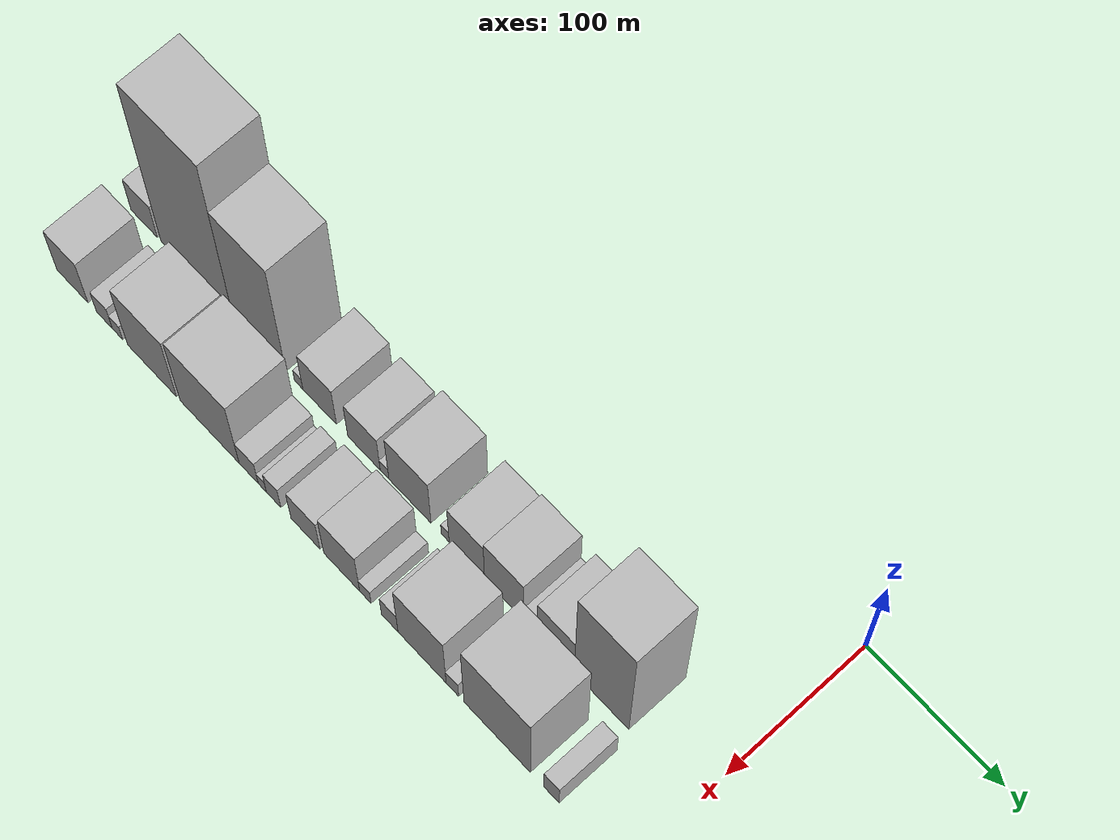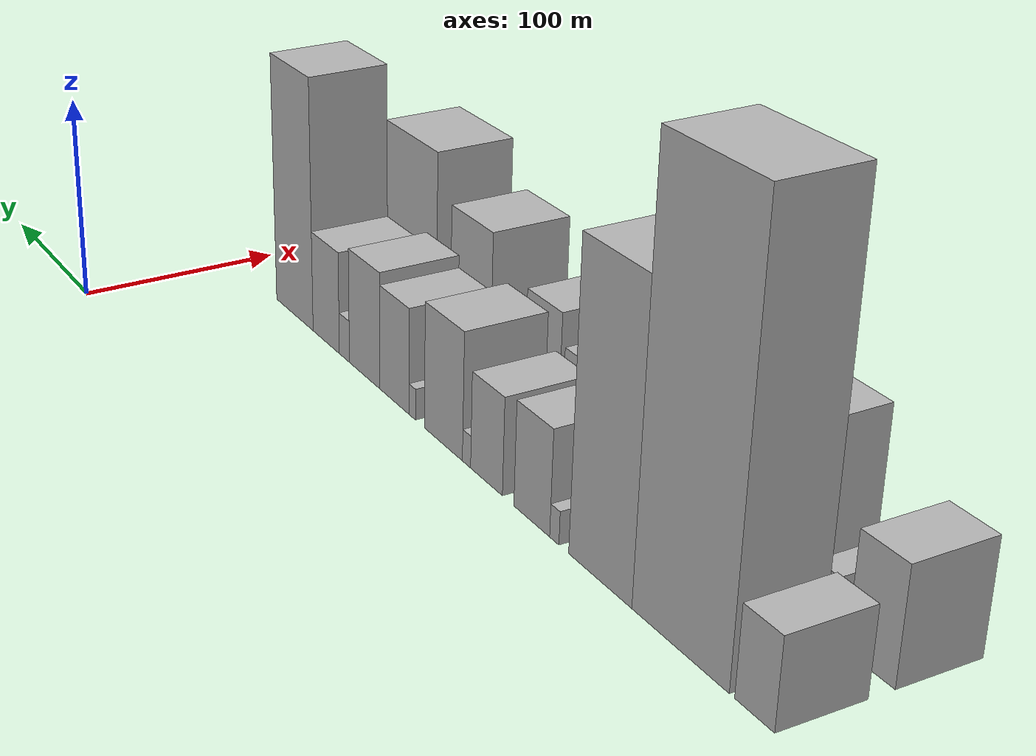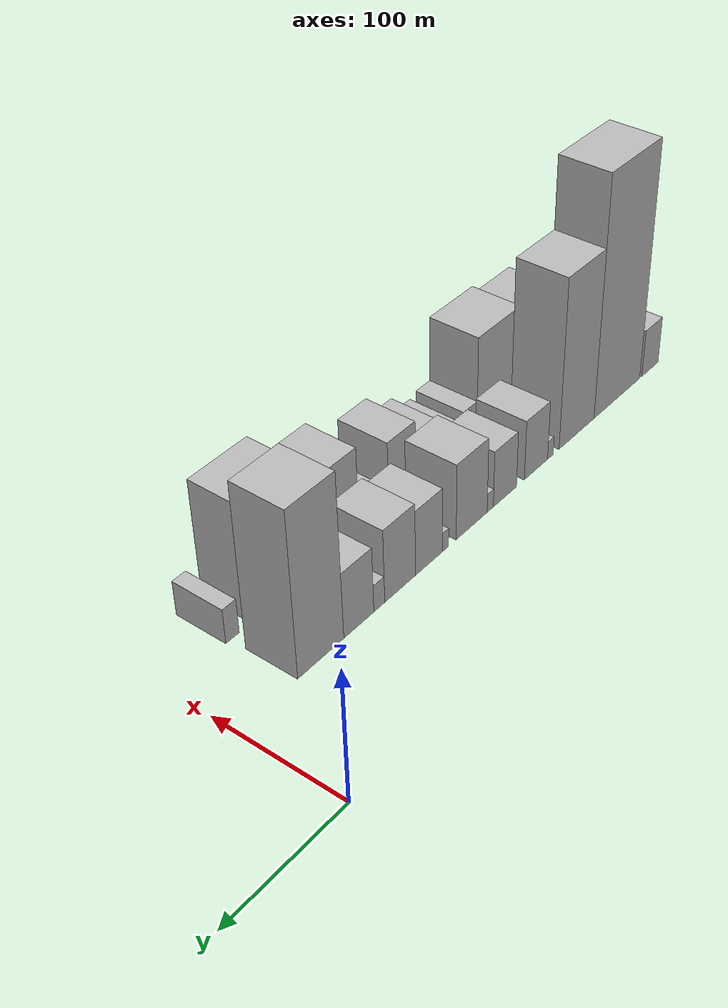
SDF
<sdf version="1.6">
 <world name="default">
  <model name="building_1">
   <static>1</static>
   <pose>100.0000 -432.9461 0 0.000000 0.000000 0.000000</pose>
   <link name="link">
    <pose>0 0 19.50 0 0 0</pose>
    <collision name="collision"><geometry><box><size>40.0000 22.1078 39.0000</size></box></geometry></collision>
    <visual name="visual">
     <cast_shadows>0</cast_shadows>
     <geometry><box><size>40.0000 22.1078 39.0000</size></box></geometry>
     <material>
      <script>
       <uri>model://HANNAS_wall/materials/scripts</uri>
       <uri>model://HANNAS_wall/materials/textures</uri>
       <name>vrc/HANNAS_wall</name>
      </script>
     </material>
    </visual>
   </link>
  </model>
  <model name="building_2">
   <static>1</static>
   <pose>100.0000 -389.1736 0 0.000000 0.000000 0.000000</pose>
   <link name="link">
    <pose>0 0 94.50 0 0 0</pose>
    <collision name="collision"><geometry><box><size>40.0000 59.4371 189.0000</size></box></geometry></collision>
    <visual name="visual">
     <cast_shadows>0</cast_shadows>
     <geometry><box><size>40.0000 59.4371 189.0000</size></box></geometry>
     <material>
      <script>
       <uri>model://HANNAS_wall/materials/scripts</uri>
       <uri>model://HANNAS_wall/materials/textures</uri>
       <name>vrc/HANNAS_wall</name>
      </script>
     </material>
    </visual>
   </link>
  </model>
  <model name="building_3">
   <static>1</static>
   <pose>100.0000 -337.9111 0 0.000000 0.000000 0.000000</pose>
   <link name="link">
    <pose>0 0 67.50 0 0 0</pose>
    <collision name="collision"><geometry><box><size>40.0000 43.0879 135.0000</size></box></geometry></collision>
    <visual name="visual">
     <cast_shadows>0</cast_shadows>
     <geometry><box><size>40.0000 43.0879 135.0000</size></box></geometry>
     <material>
      <script>
       <uri>model://HANNAS_wall/materials/scripts</uri>
       <uri>model://HANNAS_wall/materials/textures</uri>
       <name>vrc/HANNAS_wall</name>
      </script>
     </material>
    </visual>
   </link>
  </model>
  <model name="building_4">
   <static>1</static>
   <pose>100.0000 -305.9987 0 0.000000 0.000000 0.000000</pose>
   <link name="link">
    <pose>0 0 7.50 0 0 0</pose>
    <collision name="collision"><geometry><box><size>40.0000 6.7368 15.0000</size></box></geometry></collision>
    <visual name="visual">
     <cast_shadows>0</cast_shadows>
     <geometry><box><size>40.0000 6.7368 15.0000</size></box></geometry>
     <material>
      <script>
       <uri>model://HANNAS_wall/materials/scripts</uri>
       <uri>model://HANNAS_wall/materials/textures</uri>
       <name>vrc/HANNAS_wall</name>
      </script>
     </material>
    </visual>
   </link>
  </model>
  <model name="building_5">
   <static>1</static>
   <pose>100.0000 -289.1249 0 0.000000 0.000000 0.000000</pose>
   <link name="link">
    <pose>0 0 24.00 0 0 0</pose>
    <collision name="collision"><geometry><box><size>40.0000 27.0108 48.0000</size></box></geometry></collision>
    <visual name="visual">
     <cast_shadows>0</cast_shadows>
     <geometry><box><size>40.0000 27.0108 48.0000</size></box></geometry>
     <material>
      <script>
       <uri>model://HANNAS_wall/materials/scripts</uri>
       <uri>model://HANNAS_wall/materials/textures</uri>
       <name>vrc/HANNAS_wall</name>
      </script>
     </material>
    </visual>
   </link>
  </model>
  <model name="building_6">
   <static>1</static>
   <pose>100.0000 -253.7567 0 0.000000 0.000000 0.000000</pose>
   <link name="link">
    <pose>0 0 22.50 0 0 0</pose>
    <collision name="collision"><geometry><box><size>40.0000 25.7257 45.0000</size></box></geometry></collision>
    <visual name="visual">
     <cast_shadows>0</cast_shadows>
     <geometry><box><size>40.0000 25.7257 45.0000</size></box></geometry>
     <material>
      <script>
       <uri>model://HANNAS_wall/materials/scripts</uri>
       <uri>model://HANNAS_wall/materials/textures</uri>
       <name>vrc/HANNAS_wall</name>
      </script>
     </material>
    </visual>
   </link>
  </model>
  <model name="building_7">
   <static>1</static>
   <pose>100.0000 -237.4673 0 0.000000 0.000000 0.000000</pose>
   <link name="link">
    <pose>0 0 7.50 0 0 0</pose>
    <collision name="collision"><geometry><box><size>40.0000 6.8531 15.0000</size></box></geometry></collision>
    <visual name="visual">
     <cast_shadows>0</cast_shadows>
     <geometry><box><size>40.0000 6.8531 15.0000</size></box></geometry>
     <material>
      <script>
       <uri>model://HANNAS_wall/materials/scripts</uri>
       <uri>model://HANNAS_wall/materials/textures</uri>
       <name>vrc/HANNAS_wall</name>
      </script>
     </material>
    </visual>
   </link>
  </model>
  <model name="building_8">
   <static>1</static>
   <pose>100.0000 -217.5450 0 0.000000 0.000000 0.000000</pose>
   <link name="link">
    <pose>0 0 30.00 0 0 0</pose>
    <collision name="collision"><geometry><box><size>40.0000 32.9915 60.0000</size></box></geometry></collision>
    <visual name="visual">
     <cast_shadows>0</cast_shadows>
     <geometry><box><size>40.0000 32.9915 60.0000</size></box></geometry>
     <material>
      <script>
       <uri>model://HANNAS_wall/materials/scripts</uri>
       <uri>model://HANNAS_wall/materials/textures</uri>
       <name>vrc/HANNAS_wall</name>
      </script>
     </material>
    </visual>
   </link>
  </model>
  <model name="building_9">
   <static>1</static>
   <pose>100.0000 -190.0021 0 0.000000 0.000000 0.000000</pose>
   <link name="link">
    <pose>0 0 7.50 0 0 0</pose>
    <collision name="collision"><geometry><box><size>40.0000 6.0941 15.0000</size></box></geometry></collision>
    <visual name="visual">
     <cast_shadows>0</cast_shadows>
     <geometry><box><size>40.0000 6.0941 15.0000</size></box></geometry>
     <material>
      <script>
       <uri>model://HANNAS_wall/materials/scripts</uri>
       <uri>model://HANNAS_wall/materials/textures</uri>
       <name>vrc/HANNAS_wall</name>
      </script>
     </material>
    </visual>
   </link>
  </model>
  <model name="building_10">
   <static>1</static>
   <pose>100.0000 -173.2665 0 0.000000 0.000000 0.000000</pose>
   <link name="link">
    <pose>0 0 25.50 0 0 0</pose>
    <collision name="collision"><geometry><box><size>40.0000 27.3771 51.0000</size></box></geometry></collision>
    <visual name="visual">
     <cast_shadows>0</cast_shadows>
     <geometry><box><size>40.0000 27.3771 51.0000</size></box></geometry>
     <material>
      <script>
       <uri>model://HANNAS_wall/materials/scripts</uri>
       <uri>model://HANNAS_wall/materials/textures</uri>
       <name>vrc/HANNAS_wall</name>
      </script>
     </material>
    </visual>
   </link>
  </model>
  <model name="building_11">
   <static>1</static>
   <pose>100.0000 -144.5614 0 0.000000 0.000000 0.000000</pose>
   <link name="link">
    <pose>0 0 28.50 0 0 0</pose>
    <collision name="collision"><geometry><box><size>40.0000 30.0332 57.0000</size></box></geometry></collision>
    <visual name="visual">
     <cast_shadows>0</cast_shadows>
     <geometry><box><size>40.0000 30.0332 57.0000</size></box></geometry>
     <material>
      <script>
       <uri>model://HANNAS_wall/materials/scripts</uri>
       <uri>model://HANNAS_wall/materials/textures</uri>
       <name>vrc/HANNAS_wall</name>
      </script>
     </material>
    </visual>
   </link>
  </model>
  <model name="building_12">
   <static>1</static>
   <pose>100.0000 -124.3645 0 0.000000 0.000000 0.000000</pose>
   <link name="link">
    <pose>0 0 10.50 0 0 0</pose>
    <collision name="collision"><geometry><box><size>40.0000 10.3607 21.0000</size></box></geometry></collision>
    <visual name="visual">
     <cast_shadows>0</cast_shadows>
     <geometry><box><size>40.0000 10.3607 21.0000</size></box></geometry>
     <material>
      <script>
       <uri>model://HANNAS_wall/materials/scripts</uri>
       <uri>model://HANNAS_wall/materials/textures</uri>
       <name>vrc/HANNAS_wall</name>
      </script>
     </material>
    </visual>
   </link>
  </model>
  <model name="building_13">
   <static>1</static>
   <pose>100.0000 -105.2782 0 0.000000 0.000000 0.000000</pose>
   <link name="link">
    <pose>0 0 25.50 0 0 0</pose>
    <collision name="collision"><geometry><box><size>40.0000 27.8120 51.0000</size></box></geometry></collision>
    <visual name="visual">
     <cast_shadows>0</cast_shadows>
     <geometry><box><size>40.0000 27.8120 51.0000</size></box></geometry>
     <material>
      <script>
       <uri>model://HANNAS_wall/materials/scripts</uri>
       <uri>model://HANNAS_wall/materials/textures</uri>
       <name>vrc/HANNAS_wall</name>
      </script>
     </material>
    </visual>
   </link>
  </model>
  <model name="building_14">
   <static>1</static>
   <pose>100.0000 -70.9547 0 0.000000 0.000000 0.000000</pose>
   <link name="link">
    <pose>0 0 63.00 0 0 0</pose>
    <collision name="collision"><geometry><box><size>40.0000 40.8350 126.0000</size></box></geometry></collision>
    <visual name="visual">
     <cast_shadows>0</cast_shadows>
     <geometry><box><size>40.0000 40.8350 126.0000</size></box></geometry>
     <material>
      <script>
       <uri>model://HANNAS_wall/materials/scripts</uri>
       <uri>model://HANNAS_wall/materials/textures</uri>
       <name>vrc/HANNAS_wall</name>
      </script>
     </material>
    </visual>
   </link>
  </model>
  <model name="building_28">
   <static>1</static>
   <pose>152.0000 -430.9578 0 0.000000 0.000000 0.000000</pose>
   <link name="link">
    <pose>0 0 25.50 0 0 0</pose>
    <collision name="collision"><geometry><box><size>40.0000 26.0844 51.0000</size></box></geometry></collision>
    <visual name="visual">
     <cast_shadows>0</cast_shadows>
     <geometry><box><size>40.0000 26.0844 51.0000</size></box></geometry>
     <material>
      <script>
       <uri>model://HANNAS_wall/materials/scripts</uri>
       <uri>model://HANNAS_wall/materials/textures</uri>
       <name>vrc/HANNAS_wall</name>
      </script>
     </material>
    </visual>
   </link>
  </model>
  <model name="building_29">
   <static>1</static>
   <pose>152.0000 -404.2515 0 0.000000 0.000000 0.000000</pose>
   <link name="link">
    <pose>0 0 13.50 0 0 0</pose>
    <collision name="collision"><geometry><box><size>40.0000 13.3281 27.0000</size></box></geometry></collision>
    <visual name="visual">
     <cast_shadows>0</cast_shadows>
     <geometry><box><size>40.0000 13.3281 27.0000</size></box></geometry>
     <material>
      <script>
       <uri>model://HANNAS_wall/materials/scripts</uri>
       <uri>model://HANNAS_wall/materials/textures</uri>
       <name>vrc/HANNAS_wall</name>
      </script>
     </material>
    </visual>
   </link>
  </model>
  <model name="building_30">
   <static>1</static>
   <pose>152.0000 -393.2821 0 0.000000 0.000000 0.000000</pose>
   <link name="link">
    <pose>0 0 9.00 0 0 0</pose>
    <collision name="collision"><geometry><box><size>40.0000 8.6107 18.0000</size></box></geometry></collision>
    <visual name="visual">
     <cast_shadows>0</cast_shadows>
     <geometry><box><size>40.0000 8.6107 18.0000</size></box></geometry>
     <material>
      <script>
       <uri>model://HANNAS_wall/materials/scripts</uri>
       <uri>model://HANNAS_wall/materials/textures</uri>
       <name>vrc/HANNAS_wall</name>
      </script>
     </material>
    </visual>
   </link>
  </model>
  <model name="building_31">
   <static>1</static>
   <pose>152.0000 -364.8639 0 0.000000 0.000000 0.000000</pose>
   <link name="link">
    <pose>0 0 37.50 0 0 0</pose>
    <collision name="collision"><geometry><box><size>40.0000 40.2258 75.0000</size></box></geometry></collision>
    <visual name="visual">
     <cast_shadows>0</cast_shadows>
     <geometry><box><size>40.0000 40.2258 75.0000</size></box></geometry>
     <material>
      <script>
       <uri>model://HANNAS_wall/materials/scripts</uri>
       <uri>model://HANNAS_wall/materials/textures</uri>
       <name>vrc/HANNAS_wall</name>
      </script>
     </material>
    </visual>
   </link>
  </model>
  <model name="building_32">
   <static>1</static>
   <pose>152.0000 -317.8684 0 0.000000 0.000000 0.000000</pose>
   <link name="link">
    <pose>0 0 40.50 0 0 0</pose>
    <collision name="collision"><geometry><box><size>40.0000 47.7650 81.0000</size></box></geometry></collision>
    <visual name="visual">
     <cast_shadows>0</cast_shadows>
     <geometry><box><size>40.0000 47.7650 81.0000</size></box></geometry>
     <material>
      <script>
       <uri>model://HANNAS_wall/materials/scripts</uri>
       <uri>model://HANNAS_wall/materials/textures</uri>
       <name>vrc/HANNAS_wall</name>
      </script>
     </material>
    </visual>
   </link>
  </model>
  <model name="building_33">
   <static>1</static>
   <pose>152.0000 -286.2804 0 0.000000 0.000000 0.000000</pose>
   <link name="link">
    <pose>0 0 15.00 0 0 0</pose>
    <collision name="collision"><geometry><box><size>40.0000 15.4111 30.0000</size></box></geometry></collision>
    <visual name="visual">
     <cast_shadows>0</cast_shadows>
     <geometry><box><size>40.0000 15.4111 30.0000</size></box></geometry>
     <material>
      <script>
       <uri>model://HANNAS_wall/materials/scripts</uri>
       <uri>model://HANNAS_wall/materials/textures</uri>
       <name>vrc/HANNAS_wall</name>
      </script>
     </material>
    </visual>
   </link>
  </model>
  <model name="building_34">
   <static>1</static>
   <pose>152.0000 -275.3213 0 0.000000 0.000000 0.000000</pose>
   <link name="link">
    <pose>0 0 7.50 0 0 0</pose>
    <collision name="collision"><geometry><box><size>40.0000 6.5071 15.0000</size></box></geometry></collision>
    <visual name="visual">
     <cast_shadows>0</cast_shadows>
     <geometry><box><size>40.0000 6.5071 15.0000</size></box></geometry>
     <material>
      <script>
       <uri>model://HANNAS_wall/materials/scripts</uri>
       <uri>model://HANNAS_wall/materials/textures</uri>
       <name>vrc/HANNAS_wall</name>
      </script>
     </material>
    </visual>
   </link>
  </model>
  <model name="building_35">
   <static>1</static>
   <pose>152.0000 -266.3015 0 0.000000 0.000000 0.000000</pose>
   <link name="link">
    <pose>0 0 13.50 0 0 0</pose>
    <collision name="collision"><geometry><box><size>40.0000 11.5324 27.0000</size></box></geometry></collision>
    <visual name="visual">
     <cast_shadows>0</cast_shadows>
     <geometry><box><size>40.0000 11.5324 27.0000</size></box></geometry>
     <material>
      <script>
       <uri>model://HANNAS_wall/materials/scripts</uri>
       <uri>model://HANNAS_wall/materials/textures</uri>
       <name>vrc/HANNAS_wall</name>
      </script>
     </material>
    </visual>
   </link>
  </model>
  <model name="building_36">
   <static>1</static>
   <pose>152.0000 -241.0900 0 0.000000 0.000000 0.000000</pose>
   <link name="link">
    <pose>0 0 19.50 0 0 0</pose>
    <collision name="collision"><geometry><box><size>40.0000 22.8908 39.0000</size></box></geometry></collision>
    <visual name="visual">
     <cast_shadows>0</cast_shadows>
     <geometry><box><size>40.0000 22.8908 39.0000</size></box></geometry>
     <material>
      <script>
       <uri>model://HANNAS_wall/materials/scripts</uri>
       <uri>model://HANNAS_wall/materials/textures</uri>
       <name>vrc/HANNAS_wall</name>
      </script>
     </material>
    </visual>
   </link>
  </model>
  <model name="building_37">
   <static>1</static>
   <pose>152.0000 -212.5399 0 0.000000 0.000000 0.000000</pose>
   <link name="link">
    <pose>0 0 27.00 0 0 0</pose>
    <collision name="collision"><geometry><box><size>40.0000 28.2093 54.0000</size></box></geometry></collision>
    <visual name="visual">
     <cast_shadows>0</cast_shadows>
     <geometry><box><size>40.0000 28.2093 54.0000</size></box></geometry>
     <material>
      <script>
       <uri>model://HANNAS_wall/materials/scripts</uri>
       <uri>model://HANNAS_wall/materials/textures</uri>
       <name>vrc/HANNAS_wall</name>
      </script>
     </material>
    </visual>
   </link>
  </model>
  <model name="building_38">
   <static>1</static>
   <pose>152.0000 -193.9856 0 0.000000 0.000000 0.000000</pose>
   <link name="link">
    <pose>0 0 9.00 0 0 0</pose>
    <collision name="collision"><geometry><box><size>40.0000 8.8994 18.0000</size></box></geometry></collision>
    <visual name="visual">
     <cast_shadows>0</cast_shadows>
     <geometry><box><size>40.0000 8.8994 18.0000</size></box></geometry>
     <material>
      <script>
       <uri>model://HANNAS_wall/materials/scripts</uri>
       <uri>model://HANNAS_wall/materials/textures</uri>
       <name>vrc/HANNAS_wall</name>
      </script>
     </material>
    </visual>
   </link>
  </model>
  <model name="building_39">
   <static>1</static>
   <pose>152.0000 -175.1095 0 0.000000 0.000000 0.000000</pose>
   <link name="link">
    <pose>0 0 13.50 0 0 0</pose>
    <collision name="collision"><geometry><box><size>40.0000 12.8527 27.0000</size></box></geometry></collision>
    <visual name="visual">
     <cast_shadows>0</cast_shadows>
     <geometry><box><size>40.0000 12.8527 27.0000</size></box></geometry>
     <material>
      <script>
       <uri>model://HANNAS_wall/materials/scripts</uri>
       <uri>model://HANNAS_wall/materials/textures</uri>
       <name>vrc/HANNAS_wall</name>
      </script>
     </material>
    </visual>
   </link>
  </model>
  <model name="building_40">
   <static>1</static>
   <pose>152.0000 -150.1947 0 0.000000 0.000000 0.000000</pose>
   <link name="link">
    <pose>0 0 34.50 0 0 0</pose>
    <collision name="collision"><geometry><box><size>40.0000 36.9769 69.0000</size></box></geometry></collision>
    <visual name="visual">
     <cast_shadows>0</cast_shadows>
     <geometry><box><size>40.0000 36.9769 69.0000</size></box></geometry>
     <material>
      <script>
       <uri>model://HANNAS_wall/materials/scripts</uri>
       <uri>model://HANNAS_wall/materials/textures</uri>
       <name>vrc/HANNAS_wall</name>
      </script>
     </material>
    </visual>
   </link>
  </model>
  <model name="building_41">
   <static>1</static>
   <pose>152.0000 -126.9344 0 0.000000 0.000000 0.000000</pose>
   <link name="link">
    <pose>0 0 10.50 0 0 0</pose>
    <collision name="collision"><geometry><box><size>40.0000 9.5437 21.0000</size></box></geometry></collision>
    <visual name="visual">
     <cast_shadows>0</cast_shadows>
     <geometry><box><size>40.0000 9.5437 21.0000</size></box></geometry>
     <material>
      <script>
       <uri>model://HANNAS_wall/materials/scripts</uri>
       <uri>model://HANNAS_wall/materials/textures</uri>
       <name>vrc/HANNAS_wall</name>
      </script>
     </material>
    </visual>
   </link>
  </model>
  <model name="building_42">
   <static>1</static>
   <pose>152.0000 -93.1115 0 0.000000 0.000000 0.000000</pose>
   <link name="link">
    <pose>0 0 45.00 0 0 0</pose>
    <collision name="collision"><geometry><box><size>40.0000 50.1022 90.0000</size></box></geometry></collision>
    <visual name="visual">
     <cast_shadows>0</cast_shadows>
     <geometry><box><size>40.0000 50.1022 90.0000</size></box></geometry>
     <material>
      <script>
       <uri>model://HANNAS_wall/materials/scripts</uri>
       <uri>model://HANNAS_wall/materials/textures</uri>
       <name>vrc/HANNAS_wall</name>
      </script>
     </material>
    </visual>
   </link>
  </model>
  <model name="building_43">
   <static>1</static>
   <pose>152.0000 -52.3472 0 0.000000 0.000000 0.000000</pose>
   <link name="link">
    <pose>0 0 13.50 0 0 0</pose>
    <collision name="collision"><geometry><box><size>40.0000 11.4264 27.0000</size></box></geometry></collision>
    <visual name="visual">
     <cast_shadows>0</cast_shadows>
     <geometry><box><size>40.0000 11.4264 27.0000</size></box></geometry>
     <material>
      <script>
       <uri>model://HANNAS_wall/materials/scripts</uri>
       <uri>model://HANNAS_wall/materials/textures</uri>
       <name>vrc/HANNAS_wall</name>
      </script>
     </material>
    </visual>
   </link>
  </model>
 </world>
</sdf>
